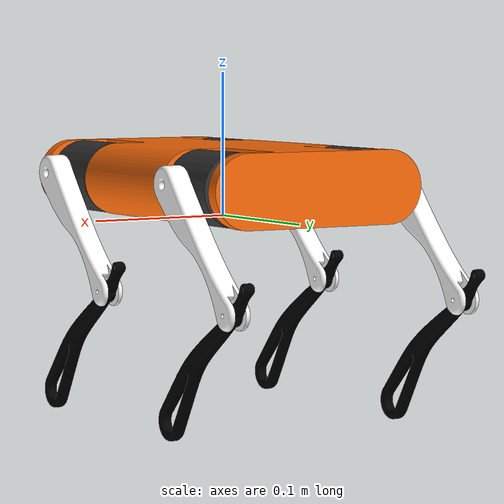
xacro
<?xml version="1.0"?>

<robot name="Sawtooth"
    xmlns:xacro="http://www.ros.org/wiki/xacro">

    <!-- include depending xacros -->
    <xacro:include filename="$(find sawtooth_description)/urdf/constants.xacro" />
    <xacro:include filename="$(find sawtooth_description)/urdf/materials.xacro" />
    <xacro:include filename="$(find sawtooth_description)/urdf/leg.xacro" />

    <!-- Location of leg(motor) joints are for simulation only-->

    <!-- links -->

    <!-- base_link = dummy (mandetory) link. It acts as the root reference for other links. -->
    <link name="base_link"/>

    <link name="body">
        <visual>
            <origin xyz="0.0 0.0 0.0" rpy="0.0 0.0 0.0"/>
            <geometry>
                <mesh filename="package://sawtooth_description/meshes/urdf_base.stl" scale="1 1 1"/>
            </geometry>
            <material name="orange"/>
        </visual>
        <collision>
            <origin xyz="0.0 0.0 0.0" rpy="0.0 0.0 0.0"/>
            <geometry>
                <mesh filename="package://sawtooth_description/meshes/urdf_base.stl" scale="1 1 1"/>
            </geometry>
        </collision>
        <inertial>
            <mass value="${body_mass}"/>
            <origin xyz="0 0 0.025" rpy="0 0 0"/>
            <!-- inertia of box -->
            <inertia
                ixx="${(body_mass/12) * (body_width * body_width + body_height * body_height)}"  ixy="0.0"  ixz="0.0"
                        iyy="${(body_mass/12) * (body_height * body_height + body_length * body_length)}"   iyz="0.0"
                                izz="${(body_mass/12) * (body_width * body_width + body_length * body_length)}"/>
        </inertial>
        <!-- you cannot nest ${...} inside another ${...}, no need to wrap each variable with ${} again — just use them like normal variables inside the arithmetic. -->
    </link>

    <!--prefix → leg name (e.g., FL, FR, HL, HR).
        side → 1 (left) or -1 (right).
        front_rear → 1 (rear) or -1 (front). -->
    <xacro:leg prefix="FL" front_rear="-1" side="1"/>
    <xacro:leg prefix="FR" front_rear="-1" side="-1"/>
    <xacro:leg prefix="RL" front_rear="1" side="1"/>
    <xacro:leg prefix="RR" front_rear="1" side="-1"/>

    <!-- joints -->
    <joint name="baselink_body_joint" type="fixed">
        <parent link="base_link" />
        <child link="body" />
        <origin xyz="0 0 0" rpy="0 0 0" />
    </joint>

</robot>

<!-- for this project -> x => length | y => width | z => height -->
<!-- don't use colcons anywhere in urdf/xacro file in comments, bcz xml parser don't allow -->

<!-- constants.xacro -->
<robot xmlns:xacro="http://www.ros.org/wiki/xacro">

    <!-- collision values -->
    <!-- body -->
    <xacro:property name="body_mass" value="0.700" />
    <!-- body_mass is approx, change accordingly -->
    <xacro:property name="body_length" value="0.160" />
    <xacro:property name="body_width" value="0.253" />
    <xacro:property name="body_height" value="0.050" />

    <!-- hip -->
    <xacro:property name="hip_mass" value="0.020" />
    <xacro:property name="hip_radius" value="0.025" />
    <xacro:property name="hip_length" value="0.050" />

    <!-- femur -->
    <xacro:property name="femur_mass" value="0.030" />
    <xacro:property name="femur_length" value="0.015"/>
    <xacro:property name="femur_width" value="0.100"/>
    <xacro:property name="femur_height" value="0.100"/>

    <!-- tibia -->
    <xacro:property name="tibia_mass" value="0.014" />
    <xacro:property name="tibia_length" value="0.008"/>
    <xacro:property name="tibia_width" value="0.112"/>
    <xacro:property name="tibia_height" value="0.112"/>

    <!-- offset values -->
    <xacro:property name="femur_joint_offset_x" value="0.010"/>
    <xacro:property name="femur_visual_offset_x" value="0.010"/>
    <xacro:property name="Rfemur_visual_offset_x" value="0.030"/>
    <xacro:property name="femur_visual_offset_y" value="0.010"/>
    <xacro:property name="femur_visual_offset_z" value="0.050"/>

    <xacro:property name="tibia_visual_offset_x" value="0.02"/>
    <xacro:property name="tibia_visual_offset_y" value="0.088"/>
    <xacro:property name="tibia_visual_offset_z" value="0.025"/>

</robot>

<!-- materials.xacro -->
<robot xmlns:xacro="http://www.ros.org/wiki/xacro">

    <!-- materials -->
    <material name="black">
        <color rgba="0.0 0.0 0.0 1.0" />
    </material>

    <material name="blue">
        <color rgba="0.0 0.0 0.8 1.0"/>
    </material>

    <material name="green">
        <color rgba="0.0 0.8 0.0 1.0"/>
    </material>

    <material name="grey">
        <color rgba="0.2 0.2 0.2 1.0"/>
    </material>

    <material name="silver">
        <color rgba="${233/255} ${233/255} ${216/255} 1.0"/>
    </material>

    <material name="orange">
        <color rgba="${255/255} ${108/255} ${10/255} 1.0"/>
    </material>

    <material name="brown">
        <color rgba="${222/255} ${207/255} ${195/255} 1.0"/>
    </material>

    <material name="red">
        <color rgba="0.8 0.0 0.0 1.0"/>
    </material>

    <material name="white">
        <color rgba="1.0 1.0 1.0 1.0"/>
    </material>

    <material name="yellow">
        <color rgba="1.0 1.0 0.0 1.0"/>
    </material>

</robot>

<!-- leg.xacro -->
<robot xmlns:xacro="http://www.ros.org/wiki/xacro">

    <xacro:macro name="leg" params="prefix front_rear side">

        <!-- hip link -->
        <link name="${prefix}_hip">
            <visual>
                <origin xyz="0 0 0" rpy="${pi/2.0} 0 0" />
                <geometry>
                    <cylinder radius="${hip_radius}" length="${hip_length}" />
                </geometry>
                <material name="grey"/>
            </visual>
            <collision>
                <origin xyz="0 0 0" rpy="${pi/2.0} 0 0" />
                <geometry>
                    <cylinder radius="${hip_radius}" length="${hip_length}" />
                </geometry>
            </collision>
            <inertial>
                <mass value="${hip_mass}" />
                <origin xyz="0 0 0" rpy="0 0 0"/>
                <!-- inertia of cylinder -->
                <inertia ixx="${(hip_mass/12) * (3 * hip_radius * hip_radius + hip_length * hip_length)}"
                         ixy="0.0"
                         ixz="0.0"
                         iyy="${(hip_mass/12) * (3 * hip_radius * hip_radius + hip_length * hip_length)}"
                         iyz="0.0"
                         izz="${(hip_mass * hip_radius * hip_radius)/2}" />
            </inertial>
        </link>

        <!-- femur link -->
        <link name="${prefix}_femur">
            <visual>
                <!-- if left -->
                <xacro:if value="${(side == 1)}">
                    <origin xyz="${-femur_visual_offset_x}
                                 ${-femur_visual_offset_y}
                                 ${-femur_visual_offset_z}" rpy="0 0 0"/>
                </xacro:if>
                <!-- if right -->
                <xacro:if value="${side == -1}">
                    <origin xyz="${-Rfemur_visual_offset_x}
                                 ${-femur_visual_offset_y}
                                 ${-femur_visual_offset_z}" rpy="0 0 0"/>
                </xacro:if>
                <material name="white"/>
                <geometry>
                    <mesh filename="package://sawtooth_description/meshes/urdf_femur.stl" scale="1 1 1"/>
                </geometry>
            </visual>
            <collision>
                <!-- if left -->
                <xacro:if value="${(side == 1)}">
                    <origin xyz="${-femur_visual_offset_x}
                                 ${-femur_visual_offset_y}
                                 ${-femur_visual_offset_z}" rpy="0 0 0"/>
                </xacro:if>
                <!-- if right -->
                <xacro:if value="${side == -1}">
                    <origin xyz="${-Rfemur_visual_offset_x}
                                 ${-femur_visual_offset_y}
                                 ${-femur_visual_offset_z}" rpy="0 0 0"/>
                </xacro:if>
                <geometry>
                    <mesh filename="package://sawtooth_description/meshes/urdf_femur.stl" scale="1 1 1"/>
                </geometry>
            </collision>
            <inertial>
                <mass value="${femur_mass}"/>
                <origin xyz="0 0 0" rpy="0 0 0"/>
                <!-- inertia of box -->
                <inertia
                    ixx="${(femur_mass/12) * (femur_width * femur_width + femur_height * femur_height)}"
                    ixy="0.0"
                    ixz="0.0"
                    iyy="${(femur_mass/12) * (femur_height * femur_height + femur_length * femur_length)}"
                    iyz="0.0"
                    izz="${(femur_mass/12) * (femur_width * femur_width + femur_length * femur_length)}"/>
            </inertial>
        </link>

        <link name="${prefix}_tibia">
            <visual>
                <origin xyz="${-tibia_visual_offset_x}
                             ${-tibia_visual_offset_y}
                             ${tibia_visual_offset_z}" rpy="0 0 0" />
                <geometry>
                    <mesh filename="package://sawtooth_description/meshes/urdf_tibia.stl" scale="1 1 1" />
                </geometry>
                <material name="black"/>
            </visual>
            <collision>
                <origin xyz="${-tibia_visual_offset_x}
                             ${-tibia_visual_offset_y}
                             ${tibia_visual_offset_z}" rpy="0 0 0" />
                <geometry>
                    <mesh filename="package://sawtooth_description/meshes/urdf_tibia.stl" scale="1 1 1" />
                </geometry>
            </collision>
            <inertial>
                <mass value="${tibia_mass}" />
                <origin xyz="0 0 0" />
                <!-- inertia of box -->
                <inertia ixx="${(tibia_mass/12) * (tibia_width * tibia_width + tibia_height * tibia_height)}"
                         ixy="0.0"
                         ixz="0.0"
                         iyy="${(tibia_mass/12) * (tibia_height * tibia_height + tibia_length * tibia_length)}"
                         iyz="0.0"
                         izz="${(tibia_mass/12) * (tibia_width * tibia_width + tibia_length * tibia_length)}" />
            </inertial>
        </link>

        <!-- Joints -->

        <joint name="body_${prefix}_hip_joint" type="revolute">
            <parent link="body" />
            <child link="${prefix}_hip" />
            <origin xyz="${side*body_length/3}
                         ${front_rear*body_width/3}
                         ${body_height/2}" rpy="0 0 0" />
            <axis xyz="0 1 0" />
            <limit lower="-1.0" upper="1.0" effort="100" velocity="100" />
        </joint>

        <joint name="${prefix}_hip_femur_joint" type="revolute">
            <parent link="${prefix}_hip" />
            <child link="${prefix}_femur" />
            <origin xyz="${side*hip_radius} 0 0" rpy="0 0 0" />
            <axis xyz="1 0 0" />
            <limit lower="-1.0" upper="1.0" effort="100" velocity="100" />
        </joint>

        <joint name="${prefix}_femur_tibia_joint" type="revolute">
            <parent link="${prefix}_femur" />
            <child link="${prefix}_tibia" />
            <origin xyz="${side*femur_joint_offset_x} ${femur_width-0.022} ${-femur_height+0.025}" rpy="0 0 0" />
            <axis xyz="1 0 0" />
            <limit lower="-1.0" upper="1.0" effort="100" velocity="100" />
        </joint>

    </xacro:macro>

</robot>
